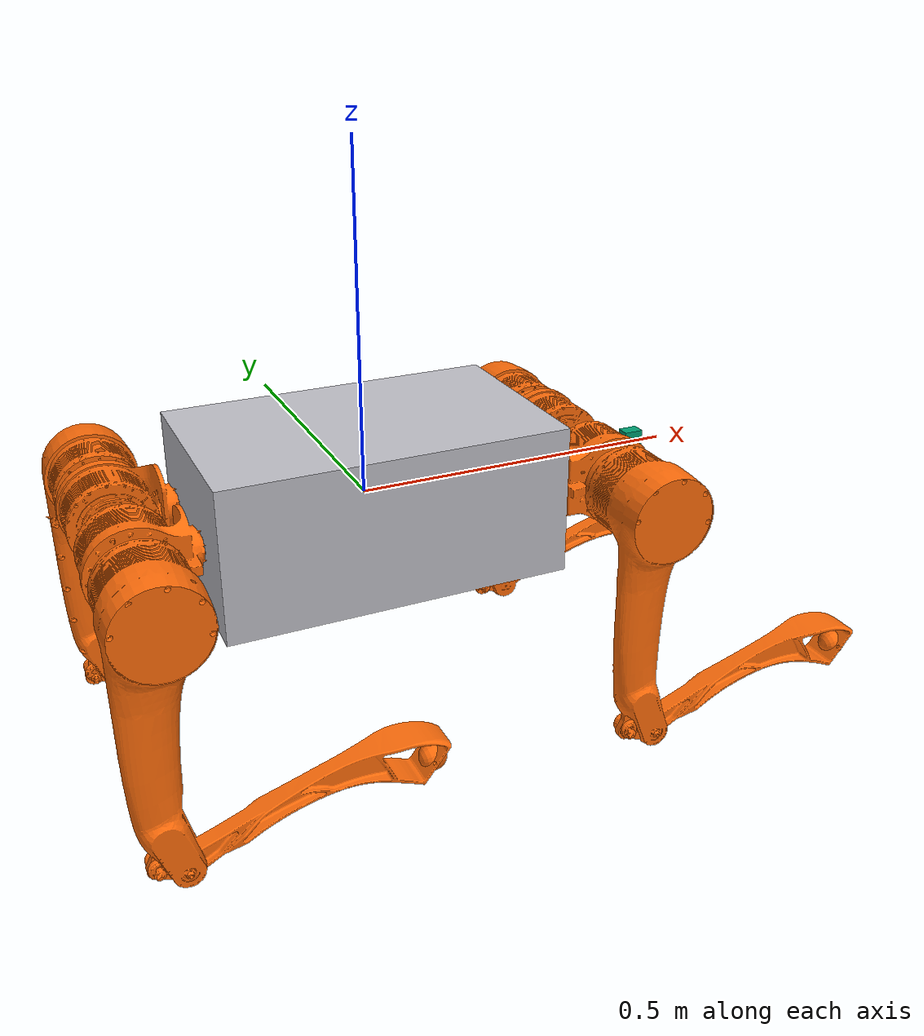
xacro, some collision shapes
<?xml version="1.0"?>

<robot xmlns:xacro="http://www.ros.org/wiki/xacro" name="robot">

    <xacro:arg name="controller_params_file" default=""/>

    <xacro:include filename="$(find legged_description)/urdf/common/materials.xacro"/>
    <xacro:include filename="$(find legged_description)/urdf/p1/leg_p1.xacro"/>
    <xacro:include filename="$(find legged_description)/urdf/common/gazebo.xacro"/>
    <xacro:include filename="$(find legged_description)/urdf/common/imu.xacro"/>
    <xacro:include filename="$(find legged_description)/urdf/common/ros2_control.xacro"/>
    <xacro:include filename="$(find legged_description)/urdf/common/e1r_lidar.xacro"/>

    <xacro:include filename="$(find legged_description)/urdf/p1/const.xacro"/>

    <xacro:arg name="hardware_plugin" default="legged_gazebo/LeggedHWSim"/>
    <xacro:arg name="robot_type" default="p1"/>
    <xacro:arg name="power_limit" default="4"/>
    <xacro:arg name="contact_threshold" default="40"/>
    <xacro:arg name="delay" default="0.009"/>
    <xacro:arg name="command_mode" default="10"/>
    <xacro:arg name="dds_domain" default="0"/>
    <xacro:arg name="dds_state_topic" default="p1_motor_state"/>
    <xacro:arg name="dds_imu_topic" default="p1_imu"/>
    <xacro:arg name="dds_command_topic" default="p1_motor_cmd"/>
    <xacro:arg name="emergency_stop_topic" default="/p1_emergency_stop"/>
    <xacro:arg name="dds_joint_order" default="LF_HAA,LF_HFE,LF_KFE,LH_HAA,LH_HFE,LH_KFE,RF_HAA,RF_HFE,RF_KFE,RH_HAA,RH_HFE,RH_KFE"/>
    <xacro:arg name="contact_estimation_method" default="current"/>
    <xacro:arg name="contact_force_threshold" default="40.0"/>
    <xacro:arg name="current_to_torque_scale" default="1"/>
    <xacro:arg name="current_to_torque_offset" default="0.0"/>
    <xacro:arg name="feedforward_torque_slew_rate" default="150.0"/>
    <xacro:arg name="max_feedforward_torque" default="0.0"/>

    <xacro:property name="mesh_path" value="file://$(find legged_description)/meshes/p1"/>

    <link name="base">
        <visual>
            <origin rpy="0 0 0" xyz="0 0 0"/>
            <geometry>
                <mesh filename="${mesh_path}/trunk.dae" scale="1 1 1"/>
            </geometry>
            <material name="silver"/>
        </visual>
        <collision>
            <origin rpy="0 0 0" xyz="0 0 0"/>
            <geometry>
                <box size="${trunk_length} ${trunk_width} ${trunk_height}"/>
            </geometry>
        </collision>
        <inertial>
            <origin rpy="0 0 0" xyz="${trunk_com_x} ${trunk_com_y} ${trunk_com_z}"/>
            <mass value="${trunk_mass}"/>
            <inertia
                    ixx="${trunk_ixx}" ixy="${trunk_ixy}" ixz="${trunk_ixz}"
                    iyy="${trunk_iyy}" iyz="${trunk_iyz}"
                    izz="${trunk_izz}"/>
        </inertial>
    </link>

    <xacro:IMU connected_to="base" imu_name="base_imu" xyz="0. 0. 0." rpy="0. 0. 0."/>

    <!-- 激光雷达安装位置：相对于 base link 的偏移 (x y z) 和旋转 (roll pitch yaw) -->
    <xacro:lidar parent_link="base" name_prefix="e1r"
                 h_fov_deg="120" v_fov_deg="90"
                 angular_resolution_deg="1.25" max_range="75.0"
                 xyz="0.45 0 0." rpy="0 0 0"/>

    <xacro:leg_p1 prefix="LF" mesh_path="${mesh_path}" mirror="1" mirror_dae="True" front_hind="1" front_hind_dae="True">
        <origin rpy="0 0 0" xyz="${leg_offset_x} ${leg_offset_y} 0"/>
    </xacro:leg_p1>

    <xacro:leg_p1 prefix="LH" mesh_path="${mesh_path}" mirror="1" mirror_dae="True" front_hind="-1" front_hind_dae="False">
        <origin rpy="0 0 0" xyz="${-leg_offset_x} ${leg_offset_y} 0"/>
    </xacro:leg_p1>

    <xacro:leg_p1 prefix="RF" mesh_path="${mesh_path}" mirror="-1" mirror_dae="False" front_hind="1" front_hind_dae="True">
        <origin rpy="0 0 0" xyz="${leg_offset_x} ${-leg_offset_y} 0"/>
    </xacro:leg_p1>

    <xacro:leg_p1 prefix="RH" mesh_path="${mesh_path}" mirror="-1" mirror_dae="False" front_hind="-1" front_hind_dae="False">
        <origin rpy="0 0 0" xyz="${-leg_offset_x} ${-leg_offset_y} 0"/>
    </xacro:leg_p1>

    <xacro:legged_ros2_control hardware_plugin="$(arg hardware_plugin)"
                                       robot_type="$(arg robot_type)"
                                       power_limit="$(arg power_limit)"
                                       contact_threshold="$(arg contact_threshold)"
                                       delay="$(arg delay)"
                                       command_mode="$(arg command_mode)"
                                       dds_domain="$(arg dds_domain)"
                                       dds_state_topic="$(arg dds_state_topic)"
                                       dds_imu_topic="$(arg dds_imu_topic)"
                                       dds_command_topic="$(arg dds_command_topic)"
                                       emergency_stop_topic="$(arg emergency_stop_topic)"
                                       dds_joint_order="$(arg dds_joint_order)"
                                       contact_estimation_method="$(arg contact_estimation_method)"
                                       contact_force_threshold="$(arg contact_force_threshold)"
                                       current_to_torque_scale="$(arg current_to_torque_scale)"
                                       current_to_torque_offset="$(arg current_to_torque_offset)"
                                       feedforward_torque_slew_rate="$(arg feedforward_torque_slew_rate)"
                                       max_feedforward_torque="$(arg max_feedforward_torque)"/>

</robot>

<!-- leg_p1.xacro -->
<!-- P1 leg macro aligned with lr_p1.urdf: no Go1 hip pi-flips, same HAA limits L/R -->

<robot xmlns:xacro="http://www.ros.org/wiki/xacro">

    <xacro:include filename="$(find legged_description)/urdf/common/transmission.xacro"/>

    <xacro:macro name="leg_p1" params="prefix mesh_path mirror mirror_dae front_hind front_hind_dae *origin">

        <joint name="${prefix}_HAA" type="revolute">
            <xacro:insert_block name="origin"/>
            <parent link="base"/>
            <child link="${prefix}_hip"/>
            <axis xyz="1 0 0"/>
            <dynamics damping="${damping}" friction="${friction}"/>
            <limit effort="${hip_torque_max}" velocity="${hip_velocity_max}" lower="${hip_position_min}"
                   upper="${hip_position_max}"/>
        </joint>

        <link name="${prefix}_hip">
            <visual>
                <xacro:if value="${(mirror_dae == True) and (front_hind_dae == True)}">
                    <origin rpy="0 0 0" xyz="0 0 0"/>
                </xacro:if>
                <xacro:if value="${(mirror_dae == False) and (front_hind_dae == True)}">
                    <origin rpy="${pi} 0 0" xyz="0 0 0"/>
                </xacro:if>
                <xacro:if value="${(mirror_dae == True) and (front_hind_dae == False)}">
                    <origin rpy="0 ${pi} 0" xyz="0 0 0"/>
                </xacro:if>
                <xacro:if value="${(mirror_dae == False) and (front_hind_dae == False)}">
                    <origin rpy="${pi} ${pi} 0" xyz="0 0 0"/>
                </xacro:if>
                <geometry>
                    <mesh filename="${mesh_path}/hip.dae" scale="1 1 1"/>
                </geometry>
                <material name="orange"/>
            </visual>
            <collision>
                <origin rpy="${pi/2.0} 0 0" xyz="0 0 0"/>
                <geometry>
                    <cylinder length="${hip_length}" radius="${hip_radius}"/>
                </geometry>
            </collision>
            <inertial>
                <origin rpy="0 0 0" xyz="${hip_com_x*front_hind} ${hip_com_y*mirror} ${hip_com_z}"/>
                <mass value="${hip_mass}"/>
                <inertia
                        ixx="${hip_ixx}" ixy="${hip_ixy*mirror*front_hind}" ixz="${hip_ixz*front_hind}"
                        iyy="${hip_iyy}" iyz="${hip_iyz*mirror}"
                        izz="${hip_izz}"/>
            </inertial>
        </link>

        <joint name="${prefix}_HFE" type="revolute">
            <origin rpy="0 0 0" xyz="${hip_thigh_offset_x*front_hind} ${thigh_offset*mirror} 0"/>
            <parent link="${prefix}_hip"/>
            <child link="${prefix}_thigh"/>
            <axis xyz="0 1 0"/>
            <dynamics damping="${damping}" friction="${friction}"/>
            <limit effort="${thigh_torque_max}" velocity="${thigh_velocity_max}" lower="${thigh_position_min}"
                   upper="${thigh_position_max}"/>
        </joint>

        <link name="${prefix}_thigh">
            <visual>
                <origin rpy="0 0 0" xyz="0 0 0"/>
                <geometry>
                    <xacro:if value="${mirror_dae == True}">
                        <mesh filename="${mesh_path}/thigh.dae" scale="1 1 1"/>
                    </xacro:if>
                    <xacro:if value="${mirror_dae == False}">
                        <mesh filename="${mesh_path}/thigh_mirror.dae" scale="1 1 1"/>
                    </xacro:if>
                </geometry>
                <material name="orange"/>
            </visual>
            <collision>
                <origin rpy="0 ${pi/2.0+0.1} 0" xyz="${thigh_x_offset} ${mirror*thigh_y_offset} ${-thigh_length/2.0}"/>
                <geometry>
                    <box size="${thigh_length} ${thigh_width} ${thigh_height}"/>
                </geometry>
            </collision>
            <collision>
                <origin rpy="${pi/2.0} 0 0" xyz="0 ${mirror*thigh_shoulder_y_offset} 0"/>
                <geometry>
                    <cylinder length="${thigh_shoulder_length}" radius="${thigh_shoulder_radius}"/>
                </geometry>
            </collision>
            <inertial>
                <origin rpy="0 0 0" xyz="${thigh_com_x} ${thigh_com_y*mirror} ${thigh_com_z}"/>
                <mass value="${thigh_mass}"/>
                <inertia
                        ixx="${thigh_ixx}" ixy="${thigh_ixy*mirror}" ixz="${thigh_ixz}"
                        iyy="${thigh_iyy}" iyz="${thigh_iyz*mirror}"
                        izz="${thigh_izz}"/>
            </inertial>
        </link>

        <joint name="${prefix}_KFE" type="revolute">
            <origin rpy="0 0 0" xyz="0 ${knee_offset_y*mirror} ${-thigh_length}"/>
            <parent link="${prefix}_thigh"/>
            <child link="${prefix}_calf"/>
            <axis xyz="0 1 0"/>
            <dynamics damping="${damping}" friction="${friction}"/>
            <limit effort="${calf_torque_max}" velocity="${calf_velocity_max}" lower="${calf_position_min}" upper="${calf_position_max}"/>
        </joint>

        <link name="${prefix}_calf">
            <visual>
                <origin rpy="0 0 0" xyz="0 0 0"/>
                <geometry>
                    <mesh filename="${mesh_path}/calf.dae" scale="1 1 1"/>
                </geometry>
                <material name="orange"/>
            </visual>
            <collision>
                <origin rpy="0 ${pi/2.0} 0" xyz="${calf_x_offset} 0 ${-calf_length/2.0}"/>
                <geometry>
                    <box size="${calf_length} ${calf_width} ${calf_height}"/>
                </geometry>
            </collision>
            <inertial>
                <origin rpy="0 0 0" xyz="${calf_com_x} ${calf_com_y} ${calf_com_z}"/>
                <mass value="${calf_mass}"/>
                <inertia
                        ixx="${calf_ixx}" ixy="${calf_ixy}" ixz="${calf_ixz}"
                        iyy="${calf_iyy}" iyz="${calf_iyz}"
                        izz="${calf_izz}"/>
            </inertial>
        </link>

        <joint name="${prefix}_foot_fixed" type="fixed" dont_collapse="true">
            <origin rpy="0 0 0" xyz="0 0 ${-(calf_length)}"/>
            <parent link="${prefix}_calf"/>
            <child link="${prefix}_FOOT"/>
        </joint>

        <link name="${prefix}_FOOT">
            <visual>
                <origin rpy="0 0 0" xyz="0 0 0"/>
                <geometry>
                    <sphere radius="${foot_radius-0.01}"/>
                </geometry>
                <material name="orange"/>
            </visual>
            <collision>
                <origin rpy="0 0 0" xyz="0 0 0"/>
                <geometry>
                    <sphere radius="${foot_radius}"/>
                </geometry>
            </collision>
            <inertial>
                <mass value="${foot_mass}"/>
                <inertia
                        ixx="${(2*foot_mass)/5.0*(foot_radius*foot_radius)}" ixy="0.0" ixz="0.0"
                        iyy="${(2*foot_mass)/5.0*(foot_radius*foot_radius)}" iyz="0.0"
                        izz="${(2*foot_mass)/5.0*(foot_radius*foot_radius)}"/>
            </inertial>
        </link>

        <gazebo reference="${prefix}_HAA">
            <initial_position>0.0</initial_position>
        </gazebo>
        <gazebo reference="${prefix}_HFE">
            <initial_position>0.0</initial_position>
        </gazebo>
        <gazebo reference="${prefix}_KFE">
            <initial_position>0.0</initial_position>
        </gazebo>

        <gazebo reference="${prefix}_foot_fixed">
            <disableFixedJointLumping>true</disableFixedJointLumping>
        </gazebo>

        <gazebo reference="${prefix}_hip">
            <mu1>0.2</mu1>
            <mu2>0.2</mu2>
            <material>Gazebo/DarkGrey</material>
        </gazebo>
        <gazebo reference="${prefix}_thigh">
            <mu1>0.2</mu1>
            <mu2>0.2</mu2>
            <self_collide>0</self_collide>
            <material>Gazebo/DarkGrey</material>
            <kp value="1000000.0"/>
            <kd value="100.0"/>
        </gazebo>
        <gazebo reference="${prefix}_calf">
            <mu1>0.6</mu1>
            <mu2>0.6</mu2>
            <self_collide>1</self_collide>
        </gazebo>
        <gazebo reference="${prefix}_FOOT">
            <mu1>0.6</mu1>
            <mu2>0.6</mu2>
            <self_collide>1</self_collide>
            <material>Gazebo/DarkGrey</material>
            <kp value="1000000.0"/>
            <kd value="100.0"/>
        </gazebo>

        <xacro:leg_transmission name="${prefix}"/>
    </xacro:macro>
</robot>

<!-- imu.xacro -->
<robot xmlns:xacro="http://www.ros.org/wiki/xacro" name="imu">
    <xacro:macro name="IMU" params="connected_to imu_name xyz:='0 0 0' rpy:='0 0 0' ">
        <!-- Imu is fixed to the base link -->
        <joint name="${imu_name}_joint" type="fixed">
            <origin xyz="${xyz}" rpy="${rpy}"/>
            <parent link="${connected_to}"/>
            <child link="${imu_name}"/>
        </joint>
        <!-- Imu link -->
        <link name="${imu_name}">
            <inertial>
                <mass value="0.01"/>
                <origin rpy="0 0 0" xyz="0 0 0"/>
                <inertia ixx="0.000001" ixy="0" ixz="0" iyy="0.000001" iyz="0" izz="0.000001"/>
            </inertial>
            <visual>
                <origin rpy="0 0 0" xyz="0 0 0"/>
                <geometry>
                    <box size="0.015 0.015 0.004"/>
                </geometry>
            </visual>
            <material name="orange">
                <color rgba="255 108 10 255"/>
            </material>
        </link>
        <gazebo reference="${imu_name}">
            <material>Gazebo/Orange</material>
            <sensor name="${imu_name}_sensor" type="imu">
                <always_on>true</always_on>
                <update_rate>200</update_rate>
                <plugin name="${imu_name}_plugin" filename="libgazebo_ros_imu_sensor.so">
                    <ros>
                        <namespace>/</namespace>
                        <remapping>~/out:=imu</remapping>
                    </ros>
                    <frame_name>${imu_name}</frame_name>
                </plugin>
            </sensor>
        </gazebo>
        <gazebo reference="${imu_name}_joint">
            <disableFixedJointLumping>true</disableFixedJointLumping>
        </gazebo>
    </xacro:macro>
</robot>

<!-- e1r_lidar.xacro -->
<robot name="lidar" xmlns:xacro="http://www.ros.org/wiki/xacro">

    <!-- 矩形视场 GPU 雷达：水平 120° × 垂直 90°，角分辨率水平/垂直均为 1.25° → 96×72 线束，最大量程 75 m -->
    <xacro:macro name="lidar" params="parent_link:=lidar_link name_prefix:=mid360
                  h_fov_deg:=120 v_fov_deg:=90 angular_resolution_deg:=1.25 max_range:=75.0
                  xyz:='0 0 0' rpy:='0 0 0'">

        <xacro:property name="h_half_rad" value="${h_fov_deg / 2.0 * 3.1415926535897931 / 180.0}"/>
        <xacro:property name="v_half_rad" value="${v_fov_deg / 2.0 * 3.1415926535897931 / 180.0}"/>
        <xacro:property name="h_samples" value="${h_fov_deg / angular_resolution_deg}"/>
        <xacro:property name="vertical_lines" value="${v_fov_deg / angular_resolution_deg}"/>

        <link name="${name_prefix}_lidar_link">
            <inertial>
                <mass value="0.01"/>
                <origin xyz="0 0 0" rpy="0 0 0"/>
                <inertia ixx="0.000001" ixy="0" ixz="0" iyy="0.000001" iyz="0" izz="0.000001"/>
            </inertial>
            <visual><geometry><box size="0.03 0.02 0.04"/></geometry></visual>
        </link>

        <joint name="${name_prefix}_to_lidar" type="fixed">
            <parent link="${parent_link}"/>
            <child link="${name_prefix}_lidar_link"/>
            <origin xyz="${xyz}" rpy="${rpy}"/>
        </joint>

        <gazebo reference="${name_prefix}_to_lidar">
            <disableFixedJointLumping>true</disableFixedJointLumping>
        </gazebo>

        <gazebo reference="${name_prefix}_lidar_link">
            <sensor name="${name_prefix}_lidar" type="ray">
                <pose>0 0 0 0 0 0</pose>
                <update_rate>10</update_rate>
                <ray>
                    <scan>
                        <horizontal>
                            <samples>${int(h_samples)}</samples>
                            <resolution>1</resolution>
                            <min_angle>${-h_half_rad}</min_angle>
                            <max_angle>${h_half_rad}</max_angle>
                        </horizontal>
                        <vertical>
                            <samples>${int(vertical_lines)}</samples>
                            <resolution>1</resolution>
                            <min_angle>${-v_half_rad}</min_angle>
                            <max_angle>${v_half_rad}</max_angle>
                        </vertical>
                    </scan>
                    <range>
                        <min>0.1</min>
                        <max>${max_range}</max>
                        <resolution>0.01</resolution>
                    </range>
                    <noise>
                        <type>gaussian</type>
                        <mean>0.0</mean>
                        <stddev>0.01</stddev>
                    </noise>
                </ray>
                <plugin name="${name_prefix}_lidar_controller" filename="libgazebo_ros_ray_sensor.so">
                    <ros>
                        <namespace>/${name_prefix}</namespace>
                        <remapping>~/out:=points</remapping>
                    </ros>
                    <output_type>sensor_msgs/PointCloud2</output_type>
                    <frame_name>${name_prefix}_lidar_link</frame_name>
                </plugin>
                <always_on>1</always_on>
                <visualize>false</visualize>
            </sensor>
        </gazebo>

    </xacro:macro>
</robot>

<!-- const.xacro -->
<robot xmlns:xacro="http://www.ros.org/wiki/xacro" name="p1_description">

    <!-- Constants for robot dimensions -->
    <xacro:property name="stick_mass" value="0.00001"/>

    <!-- simplified collision value -->
    <xacro:property name="trunk_width" value="0.3"/>
    <xacro:property name="trunk_length" value="0.5"/>
    <xacro:property name="trunk_height" value="0.22"/>
    <xacro:property name="hip_radius" value="0.06"/>
    <xacro:property name="hip_length" value="0.09"/>
    <xacro:property name="thigh_shoulder_radius" value="0.06"/>
    <xacro:property name="thigh_shoulder_length" value="0.15"/>
    <xacro:property name="thigh_shoulder_y_offset" value="0.08"/>

    <xacro:property name="thigh_width" value="0.05"/>
    <xacro:property name="thigh_height" value="0.06"/>
    <xacro:property name="thigh_x_offset" value="-0.01"/>
    <xacro:property name="thigh_y_offset" value="0.13"/>
    <xacro:property name="calf_width" value="0.03"/>
    <xacro:property name="calf_height" value="0.03"/>
    <xacro:property name="calf_x_offset" value="0.0"/>
    <xacro:property name="foot_radius" value="0.03"/>

    <!-- kinematic value (aligned with lr_p1.urdf joint origins) -->
    <!-- HFE: hip->thigh uses lateral thigh_offset (y) and hip_thigh_offset_x (x, sign via front_hind) -->
    <xacro:property name="thigh_offset" value="0.0395"/>
    <xacro:property name="hip_thigh_offset_x" value="0.089"/>
    <!-- KFE: thigh->calf y offset before -thigh_length along z -->
    <xacro:property name="knee_offset_y" value="0.1323"/>
    <xacro:property name="thigh_length" value="0.35"/>
    <xacro:property name="calf_length" value="0.35"/>

    <!-- leg offset from trunk center value -->
    <xacro:property name="leg_offset_x" value="0.259"/>
    <xacro:property name="leg_offset_y" value="0.072"/>
    <xacro:property name="trunk_offset_z" value="0.0"/>
    <xacro:property name="hip_offset" value="0.0395"/>

    <!-- joint limits -->
    <xacro:property name="damping" value="0"/>
    <xacro:property name="friction" value="0"/>
    <xacro:property name="hip_position_max" value="0.698"/>
    <xacro:property name="hip_position_min" value="-0.698"/>
    <xacro:property name="hip_velocity_max" value="12"/>
    <xacro:property name="hip_torque_max" value="220"/>
    <xacro:property name="thigh_position_max" value="2.840"/>
    <xacro:property name="thigh_position_min" value="-2.840"/>
    <xacro:property name="thigh_velocity_max" value="12"/>
    <xacro:property name="thigh_torque_max" value="220"/>
    <xacro:property name="calf_position_max" value="-0.68067"/>
    <xacro:property name="calf_position_min" value="-2.76634"/>
    <xacro:property name="calf_velocity_max" value="12"/>
    <xacro:property name="calf_torque_max" value="280"/>

    <!-- dynamics inertial value -->
    <!-- trunk -->
    <xacro:property name="trunk_mass" value="41.55318666"/>
    <xacro:property name="trunk_com_x" value="0.0036196"/>
    <xacro:property name="trunk_com_y" value="0.0020766"/>
    <xacro:property name="trunk_com_z" value="0.014291"/>
    <xacro:property name="trunk_ixx" value="0.36609753"/>
    <xacro:property name="trunk_ixy" value="-0.00244571"/>
    <xacro:property name="trunk_ixz" value="-0.06601466"/>
    <xacro:property name="trunk_iyy" value="1.65137460"/>
    <xacro:property name="trunk_iyz" value="0.00028196"/>
    <xacro:property name="trunk_izz" value="1.78840665"/>

    <!-- hip (left front) -->
    <xacro:property name="hip_mass" value="3.14861814"/>
    <xacro:property name="hip_com_x" value="0.059894"/>
    <xacro:property name="hip_com_y" value="0.012203"/>
    <xacro:property name="hip_com_z" value="-0.00002491"/>
    <xacro:property name="hip_ixx" value="0.00150762"/>
    <xacro:property name="hip_ixy" value="0.00003652"/>
    <xacro:property name="hip_ixz" value="0.00000078"/>
    <xacro:property name="hip_iyy" value="0.00308821"/>
    <xacro:property name="hip_iyz" value="-0.00000116"/>
    <xacro:property name="hip_izz" value="0.00282044"/>

    <!-- thigh -->
    <xacro:property name="thigh_mass" value="4.62267861"/>
    <xacro:property name="thigh_com_x" value="-0.0095977"/>
    <xacro:property name="thigh_com_y" value="0.11103"/>
    <xacro:property name="thigh_com_z" value="-0.088387"/>
    <xacro:property name="thigh_ixx" value="0.05234465"/>
    <xacro:property name="thigh_ixy" value="0.00083785"/>
    <xacro:property name="thigh_ixz" value="-0.00317648"/>
    <xacro:property name="thigh_iyy" value="0.04965056"/>
    <xacro:property name="thigh_iyz" value="0.00756963"/>
    <xacro:property name="thigh_izz" value="0.00794928"/>

    <!-- calf -->
    <xacro:property name="calf_mass" value="0.65025"/>
    <xacro:property name="calf_com_x" value="0.02051"/>
    <xacro:property name="calf_com_y" value="0.0000082897"/>
    <xacro:property name="calf_com_z" value="-0.17043"/>
    <xacro:property name="calf_ixx" value="0.01003897"/>
    <xacro:property name="calf_ixy" value="0.00000002"/>
    <xacro:property name="calf_ixz" value="0.00071564"/>
    <xacro:property name="calf_iyy" value="0.01022625"/>
    <xacro:property name="calf_iyz" value="-0.00000074"/>
    <xacro:property name="calf_izz" value="0.00032368"/>

    <!-- foot -->
    <xacro:property name="foot_mass" value="0.17599"/>

</robot>
